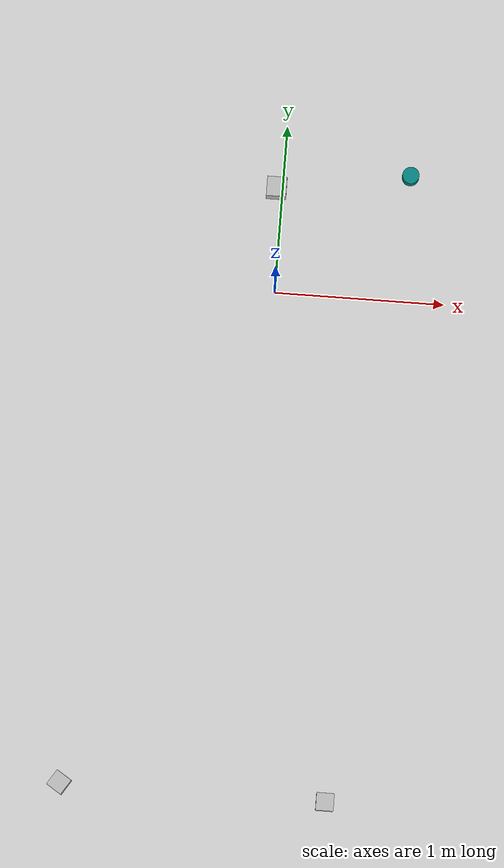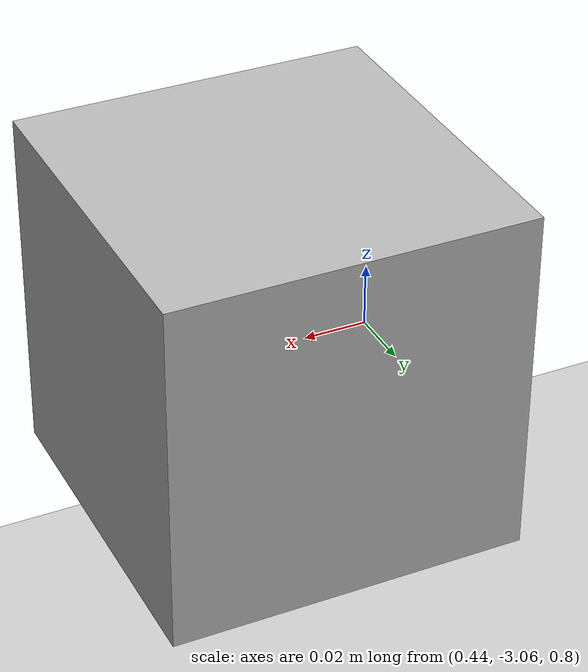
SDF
<sdf version="1.4">
 <world name="arm_world">
  <light name="sun" type="directional">
   <pose>0 0 10 0 -0 0</pose>
   <diffuse>0.8 0.8 0.8 1</diffuse>
   <specular>0.2 0.2 0.2 1</specular>
   <attenuation>
    <range>1000</range>
    <constant>0.9</constant>
    <linear>0.01</linear>
    <quadratic>0.001</quadratic>
   </attenuation>
   <direction>-0.5 0.1 -0.9</direction>
  </light>
  <include><uri>model://ground_plane</uri></include>
  <model name="camera">
   <link name="link">
    <gravity>false</gravity>
    <pose>0.5 -3.0 0.85 0 0 1.57</pose>
    <inertial><mass>0.1</mass></inertial>
    <visual name="visual"><geometry><box><size>0.1 0.1 0.1</size></box></geometry></visual>
    <sensor name="camera" type="camera">
     <camera>
      <horizontal_fov>1.047</horizontal_fov>
      <image><width>64</width><height>64</height></image>
      <clip><near>0.1</near><far>100</far></clip>
     </camera>
     <always_on>1</always_on>
     <update_rate>10</update_rate>
     <visualize>true</visualize>
    </sensor>
   </link>
  </model>
  <model name="camera2">
   <link name="link">
    <gravity>false</gravity>
    <pose>0.0 0.0 3.5 0 1.57079632679 0</pose>
    <inertial><mass>0.1</mass></inertial>
    <visual name="visual"><geometry><box><size>0.1 0.1 0.1</size></box></geometry></visual>
    <sensor name="camera" type="camera">
     <camera>
      <horizontal_fov>1.047</horizontal_fov>
      <image><width>64</width><height>64</height></image>
      <clip><near>0.1</near><far>100</far></clip>
     </camera>
     <always_on>1</always_on>
     <update_rate>10</update_rate>
     <visualize>true</visualize>
    </sensor>
   </link>
  </model>
  <model name="camera3">
   <link name="link">
    <gravity>false</gravity>
    <pose>-1.0 -3.0 0.85 0 0 1.0</pose>
    <inertial><mass>0.1</mass></inertial>
    <visual name="visual"><geometry><box><size>0.1 0.1 0.1</size></box></geometry></visual>
    <sensor name="camera" type="camera">
     <camera>
      <horizontal_fov>1.047</horizontal_fov>
      <image><width>64</width><height>64</height></image>
      <clip><near>0.1</near><far>100</far></clip>
     </camera>
     <always_on>1</always_on>
     <update_rate>10</update_rate>
     <visualize>true</visualize>
    </sensor>
   </link>
  </model>
  <model name="tube">
   <link name="tube_link">
    <pose>0.75 0.75 0 0 0 0</pose>
    <collision name="tube_collision">
     <geometry><cylinder><radius>0.05</radius><length>0.15</length></cylinder></geometry>
    </collision>
    <visual name="visual">
     <geometry><cylinder><radius>0.05</radius><length>0.15</length></cylinder></geometry>
     <material>
      <ambient>0.5 0.5 0.5 1</ambient>
      <diffuse>0.01 0.5 0.5 1</diffuse>
      <specular>0.01 0.01 0.01 1</specular>
      <emissive>0.1 0.1 0 0</emissive>
      <shader type="vertex"><normal_map>__default__</normal_map></shader>
     </material>
    </visual>
    <sensor name="my_contact" type="contact"><contact><collision>tube_collision</collision></contact></sensor>
   </link>
   <joint name="tube_joint" type="fixed">
    <child>link</child>
    <parent>world</parent>
    <axis><xyz>0 0 1</xyz></axis>
   </joint>
   <plugin name="PropPlugin" filename="libgazeboPropPlugin.so"/>
  </model>
 </world>
</sdf>
